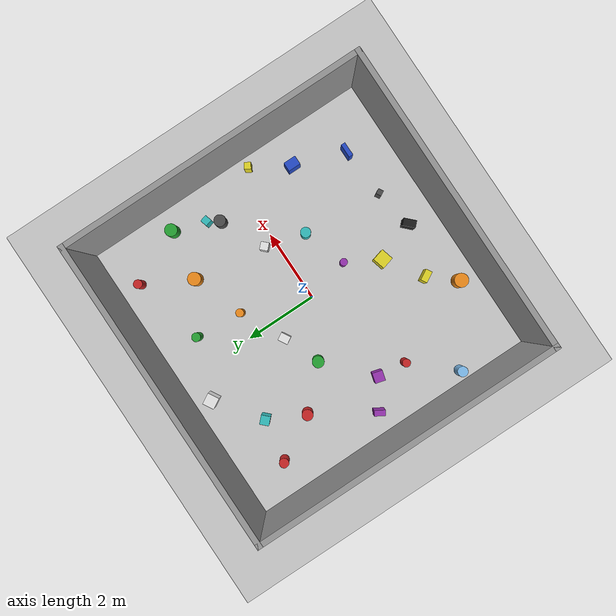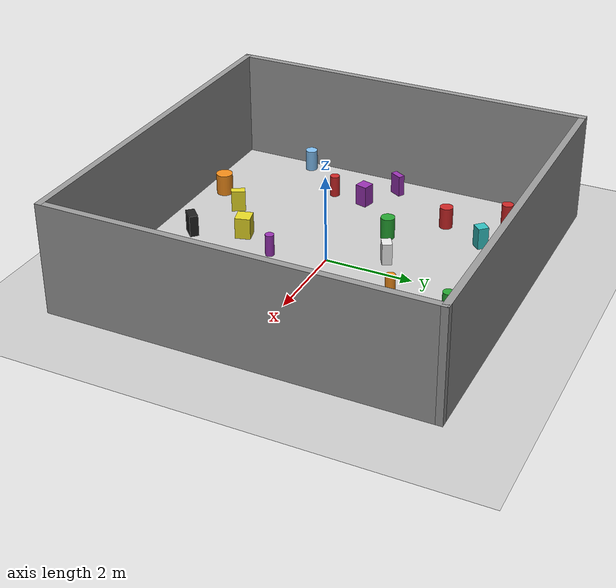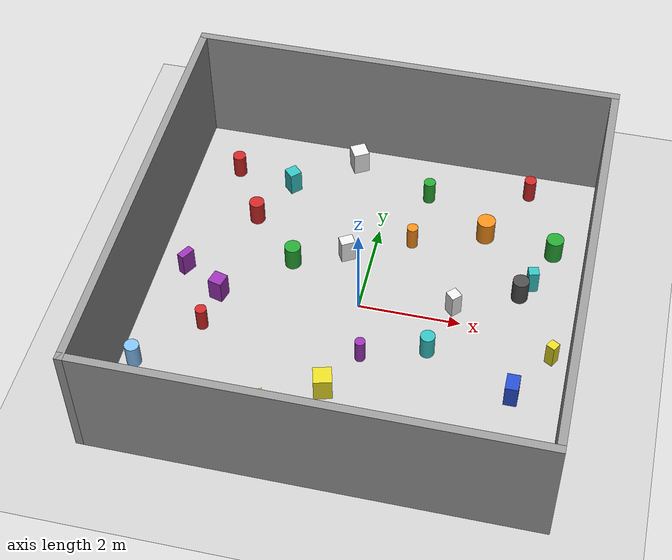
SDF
<sdf version='1.7'>
  <world name='default'>
    <light name='sun' type='directional'>
      <cast_shadows>1</cast_shadows>
      <pose>0 0 10 0 -0 0</pose>
      <diffuse>0.8 0.8 0.8 1</diffuse>
      <specular>0.2 0.2 0.2 1</specular>
      <attenuation>
        <range>1000</range>
        <constant>0.9</constant>
        <linear>0.01</linear>
        <quadratic>0.001</quadratic>
      </attenuation>
      <direction>-0.5 0.1 -0.9</direction>
      <spot>
        <inner_angle>0</inner_angle>
        <outer_angle>0</outer_angle>
        <falloff>0</falloff>
      </spot>
    </light>
    <model name='ground_plane'>
      <static>1</static>
      <link name='link'>
        <collision name='collision'>
          <geometry>
            <plane>
              <normal>0 0 1</normal>
              <size>100 100</size>
            </plane>
          </geometry>
          <surface>
            <contact>
              <collide_bitmask>65535</collide_bitmask>
              <ode/>
            </contact>
            <friction>
              <ode>
                <mu>100</mu>
                <mu2>50</mu2>
              </ode>
              <torsional>
                <ode/>
              </torsional>
            </friction>
            <bounce/>
          </surface>
          <max_contacts>10</max_contacts>
        </collision>
        <visual name='visual'>
          <cast_shadows>0</cast_shadows>
          <geometry>
            <plane>
              <normal>0 0 1</normal>
              <size>100 100</size>
            </plane>
          </geometry>
          <material>
            <script>
              <uri>file://media/materials/scripts/gazebo.material</uri>
              <name>Gazebo/FlatBeige</name>
            </script>
          </material>
        </visual>
        <self_collide>0</self_collide>
        <enable_wind>0</enable_wind>
        <kinematic>0</kinematic>
      </link>
    </model>
    <gravity>0 0 -9.8</gravity>
    <magnetic_field>6e-06 2.3e-05 -4.2e-05</magnetic_field>
    <atmosphere type='adiabatic'/>
    <physics type='ode'>
      <max_step_size>0.001</max_step_size>
      <real_time_factor>1</real_time_factor>
      <real_time_update_rate>1000</real_time_update_rate>
    </physics>
    <scene>
      <ambient>0.4 0.4 0.4 1</ambient>
      <background>0.7 0.7 0.7 1</background>
      <shadows>1</shadows>
    </scene>
    <wind/>
    <spherical_coordinates>
      <surface_model>EARTH_WGS84</surface_model>
      <latitude_deg>0</latitude_deg>
      <longitude_deg>0</longitude_deg>
      <elevation>0</elevation>
      <heading_deg>0</heading_deg>
    </spherical_coordinates>
    <model name='Untitled'>
      <pose>0.015 0.085 0 0 -0 0</pose>
      <link name='Wall_0'>
        <collision name='Wall_0_Collision'>
          <geometry>
            <box>
              <size>8.5 0.15 2.5</size>
            </box>
          </geometry>
          <pose>0 0 1.25 0 -0 0</pose>
          <max_contacts>10</max_contacts>
          <surface>
            <contact>
              <ode/>
            </contact>
            <bounce/>
            <friction>
              <torsional>
                <ode/>
              </torsional>
              <ode/>
            </friction>
          </surface>
        </collision>
        <visual name='Wall_0_Visual'>
          <pose>0 0 1.25 0 -0 0</pose>
          <geometry>
            <box>
              <size>8.5 0.15 2.5</size>
            </box>
          </geometry>
          <material>
            <script>
              <uri>file://media/materials/scripts/gazebo.material</uri>
              <name>Gazebo/Grey</name>
            </script>
            <ambient>1 1 1 1</ambient>
          </material>
          <meta>
            <layer>0</layer>
          </meta>
        </visual>
        <pose>-0 -4.175 0 0 -0 3.14159</pose>
        <self_collide>0</self_collide>
        <enable_wind>0</enable_wind>
        <kinematic>0</kinematic>
      </link>
      <link name='Wall_2'>
        <collision name='Wall_2_Collision'>
          <geometry>
            <box>
              <size>8.5 0.15 2.5</size>
            </box>
          </geometry>
          <pose>0 0 1.25 0 -0 0</pose>
          <max_contacts>10</max_contacts>
          <surface>
            <contact>
              <ode/>
            </contact>
            <bounce/>
            <friction>
              <torsional>
                <ode/>
              </torsional>
              <ode/>
            </friction>
          </surface>
        </collision>
        <visual name='Wall_2_Visual'>
          <pose>0 0 1.25 0 -0 0</pose>
          <geometry>
            <box>
              <size>8.5 0.15 2.5</size>
            </box>
          </geometry>
          <material>
            <script>
              <uri>file://media/materials/scripts/gazebo.material</uri>
              <name>Gazebo/Grey</name>
            </script>
            <ambient>1 1 1 1</ambient>
          </material>
          <meta>
            <layer>0</layer>
          </meta>
        </visual>
        <pose>4.175 -0 0 0 -0 1.5708</pose>
        <self_collide>0</self_collide>
        <enable_wind>0</enable_wind>
        <kinematic>0</kinematic>
      </link>
      <link name='Wall_3'>
        <collision name='Wall_3_Collision'>
          <geometry>
            <box>
              <size>8.5 0.15 2.5</size>
            </box>
          </geometry>
          <pose>0 0 1.25 0 -0 0</pose>
          <max_contacts>10</max_contacts>
          <surface>
            <contact>
              <ode/>
            </contact>
            <bounce/>
            <friction>
              <torsional>
                <ode/>
              </torsional>
              <ode/>
            </friction>
          </surface>
        </collision>
        <visual name='Wall_3_Visual'>
          <pose>0 0 1.25 0 -0 0</pose>
          <geometry>
            <box>
              <size>8.5 0.15 2.5</size>
            </box>
          </geometry>
          <material>
            <script>
              <uri>file://media/materials/scripts/gazebo.material</uri>
              <name>Gazebo/Grey</name>
            </script>
            <ambient>1 1 1 1</ambient>
          </material>
          <meta>
            <layer>0</layer>
          </meta>
        </visual>
        <pose>-0 4.175 0 0 -0 3.14159</pose>
        <self_collide>0</self_collide>
        <enable_wind>0</enable_wind>
        <kinematic>0</kinematic>
      </link>
      <link name='Wall_4'>
        <collision name='Wall_4_Collision'>
          <geometry>
            <box>
              <size>8.5 0.15 2.5</size>
            </box>
          </geometry>
          <pose>0 0 1.25 0 -0 0</pose>
          <max_contacts>10</max_contacts>
          <surface>
            <contact>
              <ode/>
            </contact>
            <bounce/>
            <friction>
              <torsional>
                <ode/>
              </torsional>
              <ode/>
            </friction>
          </surface>
        </collision>
        <visual name='Wall_4_Visual'>
          <pose>0 0 1.25 0 -0 0</pose>
          <geometry>
            <box>
              <size>8.5 0.15 2.5</size>
            </box>
          </geometry>
          <material>
            <script>
              <uri>file://media/materials/scripts/gazebo.material</uri>
              <name>Gazebo/Grey</name>
            </script>
            <ambient>1 1 1 1</ambient>
          </material>
          <meta>
            <layer>0</layer>
          </meta>
        </visual>
        <pose>-4.175 -0 0 0 -0 -1.5708</pose>
        <self_collide>0</self_collide>
        <enable_wind>0</enable_wind>
        <kinematic>0</kinematic>
      </link>
      <static>1</static>
    </model>
    <model name='obstacles'>
      <static>1</static>

      <!-- 圆柱障碍物1 -->
      <link name='obs_cylinder1'>
        <pose>-2.5 1.8 0.25 0 0 0</pose>
        <collision name='collision'>
          <geometry>
            <cylinder>
              <radius>0.15</radius>
              <length>0.5</length>
            </cylinder>
          </geometry>
        </collision>
        <visual name='visual'>
          <geometry>
            <cylinder>
              <radius>0.15</radius>
              <length>0.5</length>
            </cylinder>
          </geometry>
          <material>
            <script>
              <uri>file://media/materials/scripts/gazebo.material</uri>
              <name>Gazebo/Red</name>
            </script>
          </material>
        </visual>
      </link>

      <!-- 方柱障碍物1 -->
      <link name='obs_box1'>
        <pose>3.2 -1.5 0.25 0 0 0</pose>
        <collision name='collision'>
          <geometry>
            <box>
              <size>0.25 0.35 0.5</size>
            </box>
          </geometry>
        </collision>
        <visual name='visual'>
          <geometry>
            <box>
              <size>0.25 0.35 0.5</size>
            </box>
          </geometry>
          <material>
            <script>
              <uri>file://media/materials/scripts/gazebo.material</uri>
              <name>Gazebo/Blue</name>
            </script>
          </material>
        </visual>
      </link>

      <!-- 圆柱障碍物2 -->
      <link name='obs_cylinder2'>
        <pose>0.8 3.1 0.25 0 0 0</pose>
        <collision name='collision'>
          <geometry>
            <cylinder>
              <radius>0.12</radius>
              <length>0.5</length>
            </cylinder>
          </geometry>
        </collision>
        <visual name='visual'>
          <geometry>
            <cylinder>
              <radius>0.12</radius>
              <length>0.5</length>
            </cylinder>
          </geometry>
          <material>
            <script>
              <uri>file://media/materials/scripts/gazebo.material</uri>
              <name>Gazebo/Green</name>
            </script>
          </material>
        </visual>
      </link>

      <!-- 方柱障碍物2 -->
      <link name='obs_box2'>
        <pose>-1.2 -2.8 0.25 0 0 0.5236</pose>
        <collision name='collision'>
          <geometry>
            <box>
              <size>0.18 0.32 0.5</size>
            </box>
          </geometry>
        </collision>
        <visual name='visual'>
          <geometry>
            <box>
              <size>0.18 0.32 0.5</size>
            </box>
          </geometry>
          <material>
            <script>
              <uri>file://media/materials/scripts/gazebo.material</uri>
              <name>Gazebo/Yellow</name>
            </script>
          </material>
        </visual>
      </link>

      <!-- 圆柱障碍物3 -->
      <link name='obs_cylinder3'>
        <pose>2.1 2.3 0.25 0 0 0</pose>
        <collision name='collision'>
          <geometry>
            <cylinder>
              <radius>0.18</radius>
              <length>0.5</length>
            </cylinder>
          </geometry>
        </collision>
        <visual name='visual'>
          <geometry>
            <cylinder>
              <radius>0.18</radius>
              <length>0.5</length>
            </cylinder>
          </geometry>
          <material>
            <script>
              <uri>file://media/materials/scripts/gazebo.material</uri>
              <name>Gazebo/Orange</name>
            </script>
          </material>
        </visual>
      </link>

      <!-- 方柱障碍物3 -->
      <link name='obs_box3'>
        <pose>-3.5 0.2 0.25 0 0 1.047</pose>
        <collision name='collision'>
          <geometry>
            <box>
              <size>0.3 0.15 0.5</size>
            </box>
          </geometry>
        </collision>
        <visual name='visual'>
          <geometry>
            <box>
              <size>0.3 0.15 0.5</size>
            </box>
          </geometry>
          <material>
            <script>
              <uri>file://media/materials/scripts/gazebo.material</uri>
              <name>Gazebo/Purple</name>
            </script>
          </material>
        </visual>
      </link>

      <!-- 圆柱障碍物4 -->
      <link name='obs_cylinder4'>
        <pose>1.5 -0.8 0.25 0 0 0</pose>
        <collision name='collision'>
          <geometry>
            <cylinder>
              <radius>0.14</radius>
              <length>0.5</length>
            </cylinder>
          </geometry>
        </collision>
        <visual name='visual'>
          <geometry>
            <cylinder>
              <radius>0.14</radius>
              <length>0.5</length>
            </cylinder>
          </geometry>
          <material>
            <script>
              <uri>file://media/materials/scripts/gazebo.material</uri>
              <name>Gazebo/Turquoise</name>
            </script>
          </material>
        </visual>
      </link>

      <!-- 方柱障碍物4 -->
      <link name='obs_box4'>
        <pose>-0.5 1.2 0.25 0 0 2.094</pose>
        <collision name='collision'>
          <geometry>
            <box>
              <size>0.22 0.28 0.5</size>
            </box>
          </geometry>
        </collision>
        <visual name='visual'>
          <geometry>
            <box>
              <size>0.22 0.28 0.5</size>
            </box>
          </geometry>
          <material>
            <script>
              <uri>file://media/materials/scripts/gazebo.material</uri>
              <name>Gazebo/White</name>
            </script>
          </material>
        </visual>
      </link>

      <!-- 圆柱障碍物5 -->
      <link name='obs_cylinder5'>
        <pose>3.0 0.9 0.25 0 0 0</pose>
        <collision name='collision'>
          <geometry>
            <cylinder>
              <radius>0.16</radius>
              <length>0.5</length>
            </cylinder>
          </geometry>
        </collision>
        <visual name='visual'>
          <geometry>
            <cylinder>
              <radius>0.16</radius>
              <length>0.5</length>
            </cylinder>
          </geometry>
          <material>
            <script>
              <uri>file://media/materials/scripts/gazebo.material</uri>
              <name>Gazebo/DarkGrey</name>
            </script>
          </material>
        </visual>
      </link>

      <!-- 方柱障碍物5 -->
      <link name='obs_box5'>
        <pose>0.2 -3.2 0.25 0 0 0.785</pose>
        <collision name='collision'>
          <geometry>
            <box>
              <size>0.35 0.2 0.5</size>
            </box>
          </geometry>
        </collision>
        <visual name='visual'>
          <geometry>
            <box>
              <size>0.35 0.2 0.5</size>
            </box>
          </geometry>
          <material>
            <script>
              <uri>file://media/materials/scripts/gazebo.material</uri>
              <name>Gazebo/Black</name>
            </script>
          </material>
        </visual>
      </link>

      <!-- 圆柱障碍物6 -->
      <link name='obs_cylinder6'>
        <pose>-2.8 -1.1 0.25 0 0 0</pose>
        <collision name='collision'>
          <geometry>
            <cylinder>
              <radius>0.11</radius>
              <length>0.5</length>
            </cylinder>
          </geometry>
        </collision>
        <visual name='visual'>
          <geometry>
            <cylinder>
              <radius>0.11</radius>
              <length>0.5</length>
            </cylinder>
          </geometry>
          <material>
            <script>
              <uri>file://media/materials/scripts/gazebo.material</uri>
              <name>Gazebo/Red</name>
            </script>
          </material>
        </visual>
      </link>

      <!-- 方柱障碍物6 -->
      <link name='obs_box6'>
        <pose>2.7 -2.9 0.25 0 0 1.571</pose>
        <collision name='collision'>
          <geometry>
            <box>
              <size>0.12 0.38 0.5</size>
            </box>
          </geometry>
        </collision>
        <visual name='visual'>
          <geometry>
            <box>
              <size>0.12 0.38 0.5</size>
            </box>
          </geometry>
          <material>
            <script>
              <uri>file://media/materials/scripts/gazebo.material</uri>
              <name>Gazebo/Blue</name>
            </script>
          </material>
        </visual>
      </link>

      <!-- 新增圆柱障碍物7 -->
      <link name='obs_cylinder7'>
        <pose>-3.2 3.0 0.25 0 0 0</pose>
        <collision name='collision'>
          <geometry>
            <cylinder>
              <radius>0.13</radius>
              <length>0.5</length>
            </cylinder>
          </geometry>
        </collision>
        <visual name='visual'>
          <geometry>
            <cylinder>
              <radius>0.13</radius>
              <length>0.5</length>
            </cylinder>
          </geometry>
          <material>
            <script>
              <uri>file://media/materials/scripts/gazebo.material</uri>
              <name>Gazebo/Red</name>
            </script>
          </material>
        </visual>
      </link>

      <!-- 新增圆柱障碍物8 -->
      <link name='obs_cylinder8'>
        <pose>3.5 2.1 0.25 0 0 0</pose>
        <collision name='collision'>
          <geometry>
            <cylinder>
              <radius>0.17</radius>
              <length>0.5</length>
            </cylinder>
          </geometry>
        </collision>
        <visual name='visual'>
          <geometry>
            <cylinder>
              <radius>0.17</radius>
              <length>0.5</length>
            </cylinder>
          </geometry>
          <material>
            <script>
              <uri>file://media/materials/scripts/gazebo.material</uri>
              <name>Gazebo/Green</name>
            </script>
          </material>
        </visual>
      </link>

      <!-- 新增圆柱障碍物9 -->
      <link name='obs_cylinder9'>
        <pose>-1.8 -3.5 0.25 0 0 0</pose>
        <collision name='collision'>
          <geometry>
            <cylinder>
              <radius>0.19</radius>
              <length>0.5</length>
            </cylinder>
          </geometry>
        </collision>
        <visual name='visual'>
          <geometry>
            <cylinder>
              <radius>0.19</radius>
              <length>0.5</length>
            </cylinder>
          </geometry>
          <material>
            <script>
              <uri>file://media/materials/scripts/gazebo.material</uri>
              <name>Gazebo/Orange</name>
            </script>
          </material>
        </visual>
      </link>

      <!-- 新增圆柱障碍物10 -->
      <link name='obs_cylinder10'>
        <pose>0.3 -1.2 0.25 0 0 0</pose>
        <collision name='collision'>
          <geometry>
            <cylinder>
              <radius>0.10</radius>
              <length>0.5</length>
            </cylinder>
          </geometry>
        </collision>
        <visual name='visual'>
          <geometry>
            <cylinder>
              <radius>0.10</radius>
              <length>0.5</length>
            </cylinder>
          </geometry>
          <material>
            <script>
              <uri>file://media/materials/scripts/gazebo.material</uri>
              <name>Gazebo/Purple</name>
            </script>
          </material>
        </visual>
      </link>

      <!-- 新增方形障碍物7 (正方形底边) -->
      <link name='obs_square7'>
        <pose>-2.0 2.8 0.25 0 0 0.785</pose>
        <collision name='collision'>
          <geometry>
            <box>
              <size>0.25 0.25 0.5</size>
            </box>
          </geometry>
        </collision>
        <visual name='visual'>
          <geometry>
            <box>
              <size>0.25 0.25 0.5</size>
            </box>
          </geometry>
          <material>
            <script>
              <uri>file://media/materials/scripts/gazebo.material</uri>
              <name>Gazebo/Turquoise</name>
            </script>
          </material>
        </visual>
      </link>

      <!-- 新增方形障碍物8 (正方形底边) -->
      <link name='obs_square8'>
        <pose>3.8 -0.5 0.25 0 0 1.047</pose>
        <collision name='collision'>
          <geometry>
            <box>
              <size>0.18 0.18 0.5</size>
            </box>
          </geometry>
        </collision>
        <visual name='visual'>
          <geometry>
            <box>
              <size>0.18 0.18 0.5</size>
            </box>
          </geometry>
          <material>
            <script>
              <uri>file://media/materials/scripts/gazebo.material</uri>
              <name>Gazebo/Yellow</name>
            </script>
          </material>
        </visual>
      </link>

      <!-- 新增方形障碍物9 (正方形底边) -->
      <link name='obs_square9'>
        <pose>-0.8 3.7 0.25 0 0 2.094</pose>
        <collision name='collision'>
          <geometry>
            <box>
              <size>0.32 0.32 0.5</size>
            </box>
          </geometry>
        </collision>
        <visual name='visual'>
          <geometry>
            <box>
              <size>0.32 0.32 0.5</size>
            </box>
          </geometry>
          <material>
            <script>
              <uri>file://media/materials/scripts/gazebo.material</uri>
              <name>Gazebo/White</name>
            </script>
          </material>
        </visual>
      </link>

      <!-- 新增方形障碍物10 (正方形底边) -->
      <link name='obs_square10'>
        <pose>1.3 -3.0 0.25 0 0 0.524</pose>
        <collision name='collision'>
          <geometry>
            <box>
              <size>0.15 0.15 0.5</size>
            </box>
          </geometry>
        </collision>
        <visual name='visual'>
          <geometry>
            <box>
              <size>0.15 0.15 0.5</size>
            </box>
          </geometry>
          <material>
            <script>
              <uri>file://media/materials/scripts/gazebo.material</uri>
              <name>Gazebo/DarkGrey</name>
            </script>
          </material>
        </visual>
      </link>

      <!-- 第三批圆柱障碍物11 -->
      <link name='obs_cylinder11'>
        <pose>-3.8 -2.2 0.25 0 0 0</pose>
        <collision name='collision'>
          <geometry>
            <cylinder>
              <radius>0.14</radius>
              <length>0.5</length>
            </cylinder>
          </geometry>
        </collision>
        <visual name='visual'>
          <geometry>
            <cylinder>
              <radius>0.14</radius>
              <length>0.5</length>
            </cylinder>
          </geometry>
          <material>
            <script>
              <uri>file://media/materials/scripts/gazebo.material</uri>
              <name>Gazebo/SkyBlue</name>
            </script>
          </material>
        </visual>
      </link>

      <!-- 第三批圆柱障碍物12 -->
      <link name='obs_cylinder12'>
        <pose>2.8 3.6 0.25 0 0 0</pose>
        <collision name='collision'>
          <geometry>
            <cylinder>
              <radius>0.12</radius>
              <length>0.5</length>
            </cylinder>
          </geometry>
        </collision>
        <visual name='visual'>
          <geometry>
            <cylinder>
              <radius>0.12</radius>
              <length>0.5</length>
            </cylinder>
          </geometry>
          <material>
            <script>
              <uri>file://media/materials/scripts/gazebo.material</uri>
              <name>Gazebo/Red</name>
            </script>
          </material>
        </visual>
      </link>

      <!-- 第三批圆柱障碍物13 -->
      <link name='obs_cylinder13'>
        <pose>-1.5 0.8 0.25 0 0 0</pose>
        <collision name='collision'>
          <geometry>
            <cylinder>
              <radius>0.16</radius>
              <length>0.5</length>
            </cylinder>
          </geometry>
        </collision>
        <visual name='visual'>
          <geometry>
            <cylinder>
              <radius>0.16</radius>
              <length>0.5</length>
            </cylinder>
          </geometry>
          <material>
            <script>
              <uri>file://media/materials/scripts/gazebo.material</uri>
              <name>Gazebo/Green</name>
            </script>
          </material>
        </visual>
      </link>

      <!-- 第三批圆柱障碍物14 -->
      <link name='obs_cylinder14'>
        <pose>0.7 1.8 0.25 0 0 0</pose>
        <collision name='collision'>
          <geometry>
            <cylinder>
              <radius>0.11</radius>
              <length>0.5</length>
            </cylinder>
          </geometry>
        </collision>
        <visual name='visual'>
          <geometry>
            <cylinder>
              <radius>0.11</radius>
              <length>0.5</length>
            </cylinder>
          </geometry>
          <material>
            <script>
              <uri>file://media/materials/scripts/gazebo.material</uri>
              <name>Gazebo/Orange</name>
            </script>
          </material>
        </visual>
      </link>

      <!-- 第三批方形障碍物11 (正方形底边) -->
      <link name='obs_square11'>
        <pose>-2.7 -0.3 0.25 0 0 1.309</pose>
        <collision name='collision'>
          <geometry>
            <box>
              <size>0.28 0.28 0.5</size>
            </box>
          </geometry>
        </collision>
        <visual name='visual'>
          <geometry>
            <box>
              <size>0.28 0.28 0.5</size>
            </box>
          </geometry>
          <material>
            <script>
              <uri>file://media/materials/scripts/gazebo.material</uri>
              <name>Gazebo/Purple</name>
            </script>
          </material>
        </visual>
      </link>

      <!-- 第三批方形障碍物12 (正方形底边) -->
      <link name='obs_square12'>
        <pose>3.2 1.2 0.25 0 0 0.262</pose>
        <collision name='collision'>
          <geometry>
            <box>
              <size>0.20 0.20 0.5</size>
            </box>
          </geometry>
        </collision>
        <visual name='visual'>
          <geometry>
            <box>
              <size>0.20 0.20 0.5</size>
            </box>
          </geometry>
          <material>
            <script>
              <uri>file://media/materials/scripts/gazebo.material</uri>
              <name>Gazebo/Turquoise</name>
            </script>
          </material>
        </visual>
      </link>

      <!-- 第三批方形障碍物13 (正方形底边) -->
      <link name='obs_square13'>
        <pose>-0.2 -2.1 0.25 0 0 1.833</pose>
        <collision name='collision'>
          <geometry>
            <box>
              <size>0.35 0.35 0.5</size>
            </box>
          </geometry>
        </collision>
        <visual name='visual'>
          <geometry>
            <box>
              <size>0.35 0.35 0.5</size>
            </box>
          </geometry>
          <material>
            <script>
              <uri>file://media/materials/scripts/gazebo.material</uri>
              <name>Gazebo/Yellow</name>
            </script>
          </material>
        </visual>
      </link>

      <!-- 第三批方形障碍物14 (正方形底边) -->
      <link name='obs_square14'>
        <pose>1.8 0.3 0.25 0 0 2.356</pose>
        <collision name='collision'>
          <geometry>
            <box>
              <size>0.22 0.22 0.5</size>
            </box>
          </geometry>
        </collision>
        <visual name='visual'>
          <geometry>
            <box>
              <size>0.22 0.22 0.5</size>
            </box>
          </geometry>
          <material>
            <script>
              <uri>file://media/materials/scripts/gazebo.material</uri>
              <name>Gazebo/White</name>
            </script>
          </material>
        </visual>
      </link>
    </model>
    <gui fullscreen='0'>
      <camera name='user_camera'>
        <pose>0.959603 -0.417519 13.7824 3.7e-05 1.5698 1.52605</pose>
        <view_controller>orbit</view_controller>
        <projection_type>perspective</projection_type>
      </camera>
    </gui>
  </world>
</sdf>
